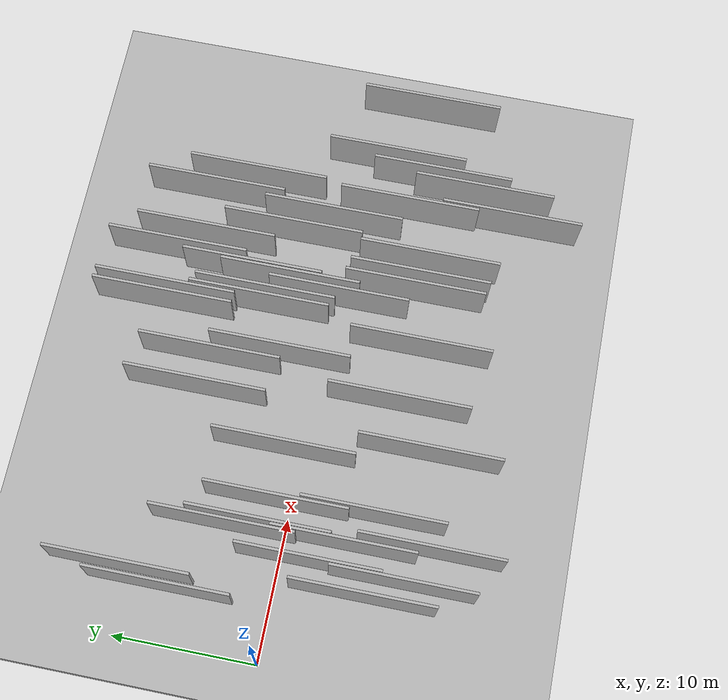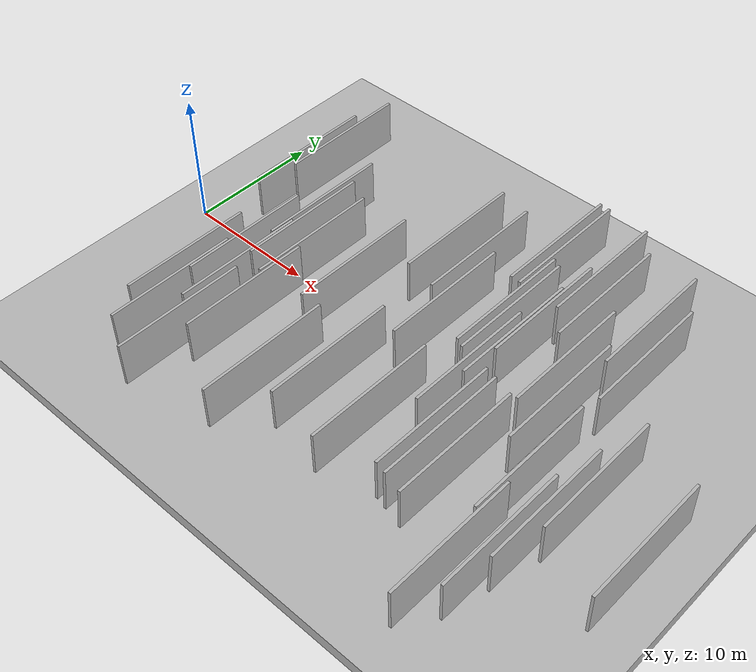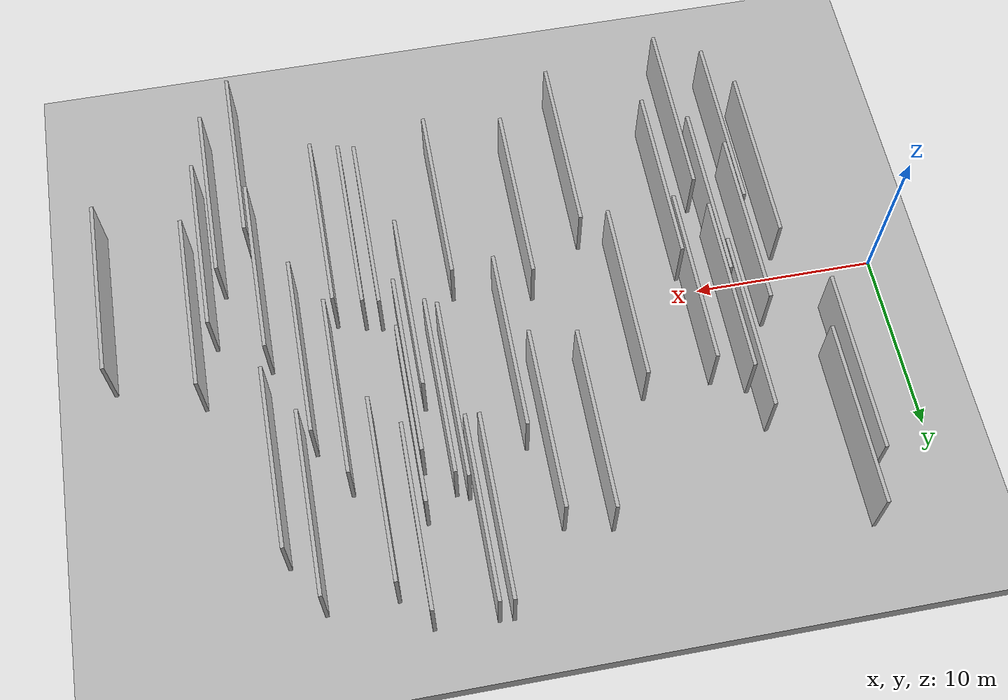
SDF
<?xml version="1.0" encoding="utf-8"?>

<sdf version="1.6">

   <world name="default">

      <gui fullscreen="0">

         <camera name="user_camera">

            <pose>-15 0 4.57585 0 0 0</pose>

            <view_controller>orbit</view_controller>

         </camera>

      </gui>

      <scene>

         <sky>

           <clouds>

             <speed>12</speed>

           </clouds>

         </sky>

         <ambient>0.4 0.4 0.4 1</ambient>

         <background>0.7 0.7 0.7 1</background>

         <shadows>1</shadows>

      </scene>

      <gravity>0 0 -9.8066</gravity>

      <magnetic_field>6e-06 2.3e-05 -4.2e-05</magnetic_field>

      <physics default="0" name="default_physics" type="ode">

         <ode>

            <solver>

               <type>quick</type>

               <iters>10</iters>

               <sor>1.0</sor>

               <use_dynamic_moi_rescaling>0</use_dynamic_moi_rescaling>

            </solver>

            <constraints>

               <cfm>0</cfm>

               <erp>0.2</erp>

               <contact_max_correcting_vel>100</contact_max_correcting_vel>

               <contact_surface_layer>0.001</contact_surface_layer>

            </constraints>

         </ode>

         <max_step_size>0.004</max_step_size>

         <real_time_factor>1</real_time_factor>

         <real_time_update_rate>250</real_time_update_rate>

      </physics>

      <light name="sun" type="directional">

         <cast_shadows>1</cast_shadows>

         <pose>0 0 10 0 0 0</pose>

         <diffuse>0.8 0.8 0.8 1</diffuse>

         <specular>0.2 0.2 0.2 1</specular>

         <attenuation>

            <range>1000</range>

            <constant>0.9</constant>

            <linear>0.01</linear>

            <quadratic>0.001</quadratic>

         </attenuation>

         <direction>-0.5 0.1 -0.9</direction>

      </light>

      <include>

         <name>ground_plane_1</name>

         <uri>model://HANNAS_ground_plane</uri>

         <pose>0 0 0  0 0 0</pose>

      </include>

      <include>

         <name>ground_plane_2</name>

         <uri>model://HANNAS_ground_plane</uri>

         <pose>100 0 0  0 0 0</pose>

      </include>

      <model name="HANNAS_wall_1">

         <static>1</static>

         <pose frame="">28.5564 -5.6848 0.0 0.000000 0.000000 1.570796</pose>

         <link name="link">

            <pose frame="">0 0 2.00 0 0 0</pose>

            <collision name="collision">

               <geometry>

                  <box>

                     <size>10.00 0.2 4.00</size>

                  </box>

               </geometry>

               <max_contacts>10</max_contacts>

               <surface>

                  <contact>

                     <ode/>

                  </contact>

                  <bounce/>

                  <friction>

                     <torsional>

                        <ode/>

                     </torsional>

                     <ode/>

                  </friction>

               </surface>

            </collision>

            <visual name="visual">

               <cast_shadows>0</cast_shadows>

               <geometry>

                  <box>

                     <size>10.00 0.2 4.00</size>

                  </box>

               </geometry>

               <material>

                  <script>

                     <uri>model://HANNAS_wall/materials/scripts</uri>

                     <uri>model://HANNAS_wall/materials/textures</uri>

                     <name>vrc/HANNAS_wall</name>

                  </script>

               </material>

            </visual>

            <self_collide>0</self_collide>

            <enable_wind>0</enable_wind>

            <kinematic>0</kinematic>

         </link>

      </model>

      <model name="HANNAS_wall_2">

         <static>1</static>

         <pose frame="">24.3171 11.7941 0.0 0.000000 0.000000 1.570796</pose>

         <link name="link">

            <pose frame="">0 0 2.00 0 0 0</pose>

            <collision name="collision">

               <geometry>

                  <box>

                     <size>10.00 0.2 4.00</size>

                  </box>

               </geometry>

               <max_contacts>10</max_contacts>

               <surface>

                  <contact>

                     <ode/>

                  </contact>

                  <bounce/>

                  <friction>

                     <torsional>

                        <ode/>

                     </torsional>

                     <ode/>

                  </friction>

               </surface>

            </collision>

            <visual name="visual">

               <cast_shadows>0</cast_shadows>

               <geometry>

                  <box>

                     <size>10.00 0.2 4.00</size>

                  </box>

               </geometry>

               <material>

                  <script>

                     <uri>model://HANNAS_wall/materials/scripts</uri>

                     <uri>model://HANNAS_wall/materials/textures</uri>

                     <name>vrc/HANNAS_wall</name>

                  </script>

               </material>

            </visual>

            <self_collide>0</self_collide>

            <enable_wind>0</enable_wind>

            <kinematic>0</kinematic>

         </link>

      </model>

      <model name="HANNAS_wall_3">

         <static>1</static>

         <pose frame="">8.7863 -4.0638 0.0 0.000000 0.000000 1.570796</pose>

         <link name="link">

            <pose frame="">0 0 2.00 0 0 0</pose>

            <collision name="collision">

               <geometry>

                  <box>

                     <size>10.00 0.2 4.00</size>

                  </box>

               </geometry>

               <max_contacts>10</max_contacts>

               <surface>

                  <contact>

                     <ode/>

                  </contact>

                  <bounce/>

                  <friction>

                     <torsional>

                        <ode/>

                     </torsional>

                     <ode/>

                  </friction>

               </surface>

            </collision>

            <visual name="visual">

               <cast_shadows>0</cast_shadows>

               <geometry>

                  <box>

                     <size>10.00 0.2 4.00</size>

                  </box>

               </geometry>

               <material>

                  <script>

                     <uri>model://HANNAS_wall/materials/scripts</uri>

                     <uri>model://HANNAS_wall/materials/textures</uri>

                     <name>vrc/HANNAS_wall</name>

                  </script>

               </material>

            </visual>

            <self_collide>0</self_collide>

            <enable_wind>0</enable_wind>

            <kinematic>0</kinematic>

         </link>

      </model>

      <model name="HANNAS_wall_4">

         <static>1</static>

         <pose frame="">3.6507 7.4484 0.0 0.000000 0.000000 1.570796</pose>

         <link name="link">

            <pose frame="">0 0 2.00 0 0 0</pose>

            <collision name="collision">

               <geometry>

                  <box>

                     <size>10.00 0.2 4.00</size>

                  </box>

               </geometry>

               <max_contacts>10</max_contacts>

               <surface>

                  <contact>

                     <ode/>

                  </contact>

                  <bounce/>

                  <friction>

                     <torsional>

                        <ode/>

                     </torsional>

                     <ode/>

                  </friction>

               </surface>

            </collision>

            <visual name="visual">

               <cast_shadows>0</cast_shadows>

               <geometry>

                  <box>

                     <size>10.00 0.2 4.00</size>

                  </box>

               </geometry>

               <material>

                  <script>

                     <uri>model://HANNAS_wall/materials/scripts</uri>

                     <uri>model://HANNAS_wall/materials/textures</uri>

                     <name>vrc/HANNAS_wall</name>

                  </script>

               </material>

            </visual>

            <self_collide>0</self_collide>

            <enable_wind>0</enable_wind>

            <kinematic>0</kinematic>

         </link>

      </model>

      <model name="HANNAS_wall_5">

         <static>1</static>

         <pose frame="">34.2869 7.2244 0.0 0.000000 0.000000 1.570796</pose>

         <link name="link">

            <pose frame="">0 0 2.00 0 0 0</pose>

            <collision name="collision">

               <geometry>

                  <box>

                     <size>10.00 0.2 4.00</size>

                  </box>

               </geometry>

               <max_contacts>10</max_contacts>

               <surface>

                  <contact>

                     <ode/>

                  </contact>

                  <bounce/>

                  <friction>

                     <torsional>

                        <ode/>

                     </torsional>

                     <ode/>

                  </friction>

               </surface>

            </collision>

            <visual name="visual">

               <cast_shadows>0</cast_shadows>

               <geometry>

                  <box>

                     <size>10.00 0.2 4.00</size>

                  </box>

               </geometry>

               <material>

                  <script>

                     <uri>model://HANNAS_wall/materials/scripts</uri>

                     <uri>model://HANNAS_wall/materials/textures</uri>

                     <name>vrc/HANNAS_wall</name>

                  </script>

               </material>

            </visual>

            <self_collide>0</self_collide>

            <enable_wind>0</enable_wind>

            <kinematic>0</kinematic>

         </link>

      </model>

      <model name="HANNAS_wall_6">

         <static>1</static>

         <pose frame="">20.2067 7.6644 0.0 0.000000 0.000000 1.570796</pose>

         <link name="link">

            <pose frame="">0 0 2.00 0 0 0</pose>

            <collision name="collision">

               <geometry>

                  <box>

                     <size>10.00 0.2 4.00</size>

                  </box>

               </geometry>

               <max_contacts>10</max_contacts>

               <surface>

                  <contact>

                     <ode/>

                  </contact>

                  <bounce/>

                  <friction>

                     <torsional>

                        <ode/>

                     </torsional>

                     <ode/>

                  </friction>

               </surface>

            </collision>

            <visual name="visual">

               <cast_shadows>0</cast_shadows>

               <geometry>

                  <box>

                     <size>10.00 0.2 4.00</size>

                  </box>

               </geometry>

               <material>

                  <script>

                     <uri>model://HANNAS_wall/materials/scripts</uri>

                     <uri>model://HANNAS_wall/materials/textures</uri>

                     <name>vrc/HANNAS_wall</name>

                  </script>

               </material>

            </visual>

            <self_collide>0</self_collide>

            <enable_wind>0</enable_wind>

            <kinematic>0</kinematic>

         </link>

      </model>

      <model name="HANNAS_wall_7">

         <static>1</static>

         <pose frame="">32.7635 9.9682 0.0 0.000000 0.000000 1.570796</pose>

         <link name="link">

            <pose frame="">0 0 2.00 0 0 0</pose>

            <collision name="collision">

               <geometry>

                  <box>

                     <size>10.00 0.2 4.00</size>

                  </box>

               </geometry>

               <max_contacts>10</max_contacts>

               <surface>

                  <contact>

                     <ode/>

                  </contact>

                  <bounce/>

                  <friction>

                     <torsional>

                        <ode/>

                     </torsional>

                     <ode/>

                  </friction>

               </surface>

            </collision>

            <visual name="visual">

               <cast_shadows>0</cast_shadows>

               <geometry>

                  <box>

                     <size>10.00 0.2 4.00</size>

                  </box>

               </geometry>

               <material>

                  <script>

                     <uri>model://HANNAS_wall/materials/scripts</uri>

                     <uri>model://HANNAS_wall/materials/textures</uri>

                     <name>vrc/HANNAS_wall</name>

                  </script>

               </material>

            </visual>

            <self_collide>0</self_collide>

            <enable_wind>0</enable_wind>

            <kinematic>0</kinematic>

         </link>

      </model>

      <model name="HANNAS_wall_8">

         <static>1</static>

         <pose frame="">30.5860 3.8707 0.0 0.000000 0.000000 1.570796</pose>

         <link name="link">

            <pose frame="">0 0 2.00 0 0 0</pose>

            <collision name="collision">

               <geometry>

                  <box>

                     <size>10.00 0.2 4.00</size>

                  </box>

               </geometry>

               <max_contacts>10</max_contacts>

               <surface>

                  <contact>

                     <ode/>

                  </contact>

                  <bounce/>

                  <friction>

                     <torsional>

                        <ode/>

                     </torsional>

                     <ode/>

                  </friction>

               </surface>

            </collision>

            <visual name="visual">

               <cast_shadows>0</cast_shadows>

               <geometry>

                  <box>

                     <size>10.00 0.2 4.00</size>

                  </box>

               </geometry>

               <material>

                  <script>

                     <uri>model://HANNAS_wall/materials/scripts</uri>

                     <uri>model://HANNAS_wall/materials/textures</uri>

                     <name>vrc/HANNAS_wall</name>

                  </script>

               </material>

            </visual>

            <self_collide>0</self_collide>

            <enable_wind>0</enable_wind>

            <kinematic>0</kinematic>

         </link>

      </model>

      <model name="HANNAS_wall_9">

         <static>1</static>

         <pose frame="">11.0904 -5.6479 0.0 0.000000 0.000000 1.570796</pose>

         <link name="link">

            <pose frame="">0 0 2.00 0 0 0</pose>

            <collision name="collision">

               <geometry>

                  <box>

                     <size>10.00 0.2 4.00</size>

                  </box>

               </geometry>

               <max_contacts>10</max_contacts>

               <surface>

                  <contact>

                     <ode/>

                  </contact>

                  <bounce/>

                  <friction>

                     <torsional>

                        <ode/>

                     </torsional>

                     <ode/>

                  </friction>

               </surface>

            </collision>

            <visual name="visual">

               <cast_shadows>0</cast_shadows>

               <geometry>

                  <box>

                     <size>10.00 0.2 4.00</size>

                  </box>

               </geometry>

               <material>

                  <script>

                     <uri>model://HANNAS_wall/materials/scripts</uri>

                     <uri>model://HANNAS_wall/materials/textures</uri>

                     <name>vrc/HANNAS_wall</name>

                  </script>

               </material>

            </visual>

            <self_collide>0</self_collide>

            <enable_wind>0</enable_wind>

            <kinematic>0</kinematic>

         </link>

      </model>

      <model name="HANNAS_wall_10">

         <static>1</static>

         <pose frame="">10.7906 0.9531 0.0 0.000000 0.000000 1.570796</pose>

         <link name="link">

            <pose frame="">0 0 2.00 0 0 0</pose>

            <collision name="collision">

               <geometry>

                  <box>

                     <size>10.00 0.2 4.00</size>

                  </box>

               </geometry>

               <max_contacts>10</max_contacts>

               <surface>

                  <contact>

                     <ode/>

                  </contact>

                  <bounce/>

                  <friction>

                     <torsional>

                        <ode/>

                     </torsional>

                     <ode/>

                  </friction>

               </surface>

            </collision>

            <visual name="visual">

               <cast_shadows>0</cast_shadows>

               <geometry>

                  <box>

                     <size>10.00 0.2 4.00</size>

                  </box>

               </geometry>

               <material>

                  <script>

                     <uri>model://HANNAS_wall/materials/scripts</uri>

                     <uri>model://HANNAS_wall/materials/textures</uri>

                     <name>vrc/HANNAS_wall</name>

                  </script>

               </material>

            </visual>

            <self_collide>0</self_collide>

            <enable_wind>0</enable_wind>

            <kinematic>0</kinematic>

         </link>

      </model>

      <model name="HANNAS_wall_11">

         <static>1</static>

         <pose frame="">25.3013 4.8208 0.0 0.000000 0.000000 1.570796</pose>

         <link name="link">

            <pose frame="">0 0 2.00 0 0 0</pose>

            <collision name="collision">

               <geometry>

                  <box>

                     <size>10.00 0.2 4.00</size>

                  </box>

               </geometry>

               <max_contacts>10</max_contacts>

               <surface>

                  <contact>

                     <ode/>

                  </contact>

                  <bounce/>

                  <friction>

                     <torsional>

                        <ode/>

                     </torsional>

                     <ode/>

                  </friction>

               </surface>

            </collision>

            <visual name="visual">

               <cast_shadows>0</cast_shadows>

               <geometry>

                  <box>

                     <size>10.00 0.2 4.00</size>

                  </box>

               </geometry>

               <material>

                  <script>

                     <uri>model://HANNAS_wall/materials/scripts</uri>

                     <uri>model://HANNAS_wall/materials/textures</uri>

                     <name>vrc/HANNAS_wall</name>

                  </script>

               </material>

            </visual>

            <self_collide>0</self_collide>

            <enable_wind>0</enable_wind>

            <kinematic>0</kinematic>

         </link>

      </model>

      <model name="HANNAS_wall_12">

         <static>1</static>

         <pose frame="">36.7367 -5.8674 0.0 0.000000 0.000000 1.570796</pose>

         <link name="link">

            <pose frame="">0 0 2.00 0 0 0</pose>

            <collision name="collision">

               <geometry>

                  <box>

                     <size>10.00 0.2 4.00</size>

                  </box>

               </geometry>

               <max_contacts>10</max_contacts>

               <surface>

                  <contact>

                     <ode/>

                  </contact>

                  <bounce/>

                  <friction>

                     <torsional>

                        <ode/>

                     </torsional>

                     <ode/>

                  </friction>

               </surface>

            </collision>

            <visual name="visual">

               <cast_shadows>0</cast_shadows>

               <geometry>

                  <box>

                     <size>10.00 0.2 4.00</size>

                  </box>

               </geometry>

               <material>

                  <script>

                     <uri>model://HANNAS_wall/materials/scripts</uri>

                     <uri>model://HANNAS_wall/materials/textures</uri>

                     <name>vrc/HANNAS_wall</name>

                  </script>

               </material>

            </visual>

            <self_collide>0</self_collide>

            <enable_wind>0</enable_wind>

            <kinematic>0</kinematic>

         </link>

      </model>

      <model name="HANNAS_wall_13">

         <static>1</static>

         <pose frame="">42.3503 -4.1378 0.0 0.000000 0.000000 1.570796</pose>

         <link name="link">

            <pose frame="">0 0 2.00 0 0 0</pose>

            <collision name="collision">

               <geometry>

                  <box>

                     <size>10.00 0.2 4.00</size>

                  </box>

               </geometry>

               <max_contacts>10</max_contacts>

               <surface>

                  <contact>

                     <ode/>

                  </contact>

                  <bounce/>

                  <friction>

                     <torsional>

                        <ode/>

                     </torsional>

                     <ode/>

                  </friction>

               </surface>

            </collision>

            <visual name="visual">

               <cast_shadows>0</cast_shadows>

               <geometry>

                  <box>

                     <size>10.00 0.2 4.00</size>

                  </box>

               </geometry>

               <material>

                  <script>

                     <uri>model://HANNAS_wall/materials/scripts</uri>

                     <uri>model://HANNAS_wall/materials/textures</uri>

                     <name>vrc/HANNAS_wall</name>

                  </script>

               </material>

            </visual>

            <self_collide>0</self_collide>

            <enable_wind>0</enable_wind>

            <kinematic>0</kinematic>

         </link>

      </model>

      <model name="HANNAS_wall_14">

         <static>1</static>

         <pose frame="">9.0002 1.7939 0.0 0.000000 0.000000 1.570796</pose>

         <link name="link">

            <pose frame="">0 0 2.00 0 0 0</pose>

            <collision name="collision">

               <geometry>

                  <box>

                     <size>10.00 0.2 4.00</size>

                  </box>

               </geometry>

               <max_contacts>10</max_contacts>

               <surface>

                  <contact>

                     <ode/>

                  </contact>

                  <bounce/>

                  <friction>

                     <torsional>

                        <ode/>

                     </torsional>

                     <ode/>

                  </friction>

               </surface>

            </collision>

            <visual name="visual">

               <cast_shadows>0</cast_shadows>

               <geometry>

                  <box>

                     <size>10.00 0.2 4.00</size>

                  </box>

               </geometry>

               <material>

                  <script>

                     <uri>model://HANNAS_wall/materials/scripts</uri>

                     <uri>model://HANNAS_wall/materials/textures</uri>

                     <name>vrc/HANNAS_wall</name>

                  </script>

               </material>

            </visual>

            <self_collide>0</self_collide>

            <enable_wind>0</enable_wind>

            <kinematic>0</kinematic>

         </link>

      </model>

      <model name="HANNAS_wall_15">

         <static>1</static>

         <pose frame="">33.9420 -3.9462 0.0 0.000000 0.000000 1.570796</pose>

         <link name="link">

            <pose frame="">0 0 2.00 0 0 0</pose>

            <collision name="collision">

               <geometry>

                  <box>

                     <size>10.00 0.2 4.00</size>

                  </box>

               </geometry>

               <max_contacts>10</max_contacts>

               <surface>

                  <contact>

                     <ode/>

                  </contact>

                  <bounce/>

                  <friction>

                     <torsional>

                        <ode/>

                     </torsional>

                     <ode/>

                  </friction>

               </surface>

            </collision>

            <visual name="visual">

               <cast_shadows>0</cast_shadows>

               <geometry>

                  <box>

                     <size>10.00 0.2 4.00</size>

                  </box>

               </geometry>

               <material>

                  <script>

                     <uri>model://HANNAS_wall/materials/scripts</uri>

                     <uri>model://HANNAS_wall/materials/textures</uri>

                     <name>vrc/HANNAS_wall</name>

                  </script>

               </material>

            </visual>

            <self_collide>0</self_collide>

            <enable_wind>0</enable_wind>

            <kinematic>0</kinematic>

         </link>

      </model>

      <model name="HANNAS_wall_16">

         <static>1</static>

         <pose frame="">23.5548 -6.6280 0.0 0.000000 0.000000 1.570796</pose>

         <link name="link">

            <pose frame="">0 0 2.00 0 0 0</pose>

            <collision name="collision">

               <geometry>

                  <box>

                     <size>10.00 0.2 4.00</size>

                  </box>

               </geometry>

               <max_contacts>10</max_contacts>

               <surface>

                  <contact>

                     <ode/>

                  </contact>

                  <bounce/>

                  <friction>

                     <torsional>

                        <ode/>

                     </torsional>

                     <ode/>

                  </friction>

               </surface>

            </collision>

            <visual name="visual">

               <cast_shadows>0</cast_shadows>

               <geometry>

                  <box>

                     <size>10.00 0.2 4.00</size>

                  </box>

               </geometry>

               <material>

                  <script>

                     <uri>model://HANNAS_wall/materials/scripts</uri>

                     <uri>model://HANNAS_wall/materials/textures</uri>

                     <name>vrc/HANNAS_wall</name>

                  </script>

               </material>

            </visual>

            <self_collide>0</self_collide>

            <enable_wind>0</enable_wind>

            <kinematic>0</kinematic>

         </link>

      </model>

      <model name="HANNAS_wall_17">

         <static>1</static>

         <pose frame="">21.2501 2.9231 0.0 0.000000 0.000000 1.570796</pose>

         <link name="link">

            <pose frame="">0 0 2.00 0 0 0</pose>

            <collision name="collision">

               <geometry>

                  <box>

                     <size>10.00 0.2 4.00</size>

                  </box>

               </geometry>

               <max_contacts>10</max_contacts>

               <surface>

                  <contact>

                     <ode/>

                  </contact>

                  <bounce/>

                  <friction>

                     <torsional>

                        <ode/>

                     </torsional>

                     <ode/>

                  </friction>

               </surface>

            </collision>

            <visual name="visual">

               <cast_shadows>0</cast_shadows>

               <geometry>

                  <box>

                     <size>10.00 0.2 4.00</size>

                  </box>

               </geometry>

               <material>

                  <script>

                     <uri>model://HANNAS_wall/materials/scripts</uri>

                     <uri>model://HANNAS_wall/materials/textures</uri>

                     <name>vrc/HANNAS_wall</name>

                  </script>

               </material>

            </visual>

            <self_collide>0</self_collide>

            <enable_wind>0</enable_wind>

            <kinematic>0</kinematic>

         </link>

      </model>

      <model name="HANNAS_wall_18">

         <static>1</static>

         <pose frame="">6.9247 -8.4202 0.0 0.000000 0.000000 1.570796</pose>

         <link name="link">

            <pose frame="">0 0 2.00 0 0 0</pose>

            <collision name="collision">

               <geometry>

                  <box>

                     <size>10.00 0.2 4.00</size>

                  </box>

               </geometry>

               <max_contacts>10</max_contacts>

               <surface>

                  <contact>

                     <ode/>

                  </contact>

                  <bounce/>

                  <friction>

                     <torsional>

                        <ode/>

                     </torsional>

                     <ode/>

                  </friction>

               </surface>

            </collision>

            <visual name="visual">

               <cast_shadows>0</cast_shadows>

               <geometry>

                  <box>

                     <size>10.00 0.2 4.00</size>

                  </box>

               </geometry>

               <material>

                  <script>

                     <uri>model://HANNAS_wall/materials/scripts</uri>

                     <uri>model://HANNAS_wall/materials/textures</uri>

                     <name>vrc/HANNAS_wall</name>

                  </script>

               </material>

            </visual>

            <self_collide>0</self_collide>

            <enable_wind>0</enable_wind>

            <kinematic>0</kinematic>

         </link>

      </model>

      <model name="HANNAS_wall_19">

         <static>1</static>

         <pose frame="">9.4298 -9.8694 0.0 0.000000 0.000000 1.570796</pose>

         <link name="link">

            <pose frame="">0 0 2.00 0 0 0</pose>

            <collision name="collision">

               <geometry>

                  <box>

                     <size>10.00 0.2 4.00</size>

                  </box>

               </geometry>

               <max_contacts>10</max_contacts>

               <surface>

                  <contact>

                     <ode/>

                  </contact>

                  <bounce/>

                  <friction>

                     <torsional>

                        <ode/>

                     </torsional>

                     <ode/>

                  </friction>

               </surface>

            </collision>

            <visual name="visual">

               <cast_shadows>0</cast_shadows>

               <geometry>

                  <box>

                     <size>10.00 0.2 4.00</size>

                  </box>

               </geometry>

               <material>

                  <script>

                     <uri>model://HANNAS_wall/materials/scripts</uri>

                     <uri>model://HANNAS_wall/materials/textures</uri>

                     <name>vrc/HANNAS_wall</name>

                  </script>

               </material>

            </visual>

            <self_collide>0</self_collide>

            <enable_wind>0</enable_wind>

            <kinematic>0</kinematic>

         </link>

      </model>

      <model name="HANNAS_wall_20">

         <static>1</static>

         <pose frame="">32.1527 1.2688 0.0 0.000000 0.000000 1.570796</pose>

         <link name="link">

            <pose frame="">0 0 2.00 0 0 0</pose>

            <collision name="collision">

               <geometry>

                  <box>

                     <size>10.00 0.2 4.00</size>

                  </box>

               </geometry>

               <max_contacts>10</max_contacts>

               <surface>

                  <contact>

                     <ode/>

                  </contact>

                  <bounce/>

                  <friction>

                     <torsional>

                        <ode/>

                     </torsional>

                     <ode/>

                  </friction>

               </surface>

            </collision>

            <visual name="visual">

               <cast_shadows>0</cast_shadows>

               <geometry>

                  <box>

                     <size>10.00 0.2 4.00</size>

                  </box>

               </geometry>

               <material>

                  <script>

                     <uri>model://HANNAS_wall/materials/scripts</uri>

                     <uri>model://HANNAS_wall/materials/textures</uri>

                     <name>vrc/HANNAS_wall</name>

                  </script>

               </material>

            </visual>

            <self_collide>0</self_collide>

            <enable_wind>0</enable_wind>

            <kinematic>0</kinematic>

         </link>

      </model>

      <model name="HANNAS_wall_21">

         <static>1</static>

         <pose frame="">37.6537 -2.3996 0.0 0.000000 0.000000 1.570796</pose>

         <link name="link">

            <pose frame="">0 0 2.00 0 0 0</pose>

            <collision name="collision">

               <geometry>

                  <box>

                     <size>10.00 0.2 4.00</size>

                  </box>

               </geometry>

               <max_contacts>10</max_contacts>

               <surface>

                  <contact>

                     <ode/>

                  </contact>

                  <bounce/>

                  <friction>

                     <torsional>

                        <ode/>

                     </torsional>

                     <ode/>

                  </friction>

               </surface>

            </collision>

            <visual name="visual">

               <cast_shadows>0</cast_shadows>

               <geometry>

                  <box>

                     <size>10.00 0.2 4.00</size>

                  </box>

               </geometry>

               <material>

                  <script>

                     <uri>model://HANNAS_wall/materials/scripts</uri>

                     <uri>model://HANNAS_wall/materials/textures</uri>

                     <name>vrc/HANNAS_wall</name>

                  </script>

               </material>

            </visual>

            <self_collide>0</self_collide>

            <enable_wind>0</enable_wind>

            <kinematic>0</kinematic>

         </link>

      </model>

      <model name="HANNAS_wall_22">

         <static>1</static>

         <pose frame="">27.6797 -5.4801 0.0 0.000000 0.000000 1.570796</pose>

         <link name="link">

            <pose frame="">0 0 2.00 0 0 0</pose>

            <collision name="collision">

               <geometry>

                  <box>

                     <size>10.00 0.2 4.00</size>

                  </box>

               </geometry>

               <max_contacts>10</max_contacts>

               <surface>

                  <contact>

                     <ode/>

                  </contact>

                  <bounce/>

                  <friction>

                     <torsional>

                        <ode/>

                     </torsional>

                     <ode/>

                  </friction>

               </surface>

            </collision>

            <visual name="visual">

               <cast_shadows>0</cast_shadows>

               <geometry>

                  <box>

                     <size>10.00 0.2 4.00</size>

                  </box>

               </geometry>

               <material>

                  <script>

                     <uri>model://HANNAS_wall/materials/scripts</uri>

                     <uri>model://HANNAS_wall/materials/textures</uri>

                     <name>vrc/HANNAS_wall</name>

                  </script>

               </material>

            </visual>

            <self_collide>0</self_collide>

            <enable_wind>0</enable_wind>

            <kinematic>0</kinematic>

         </link>

      </model>

      <model name="HANNAS_wall_23">

         <static>1</static>

         <pose frame="">29.0795 9.9142 0.0 0.000000 0.000000 1.570796</pose>

         <link name="link">

            <pose frame="">0 0 2.00 0 0 0</pose>

            <collision name="collision">

               <geometry>

                  <box>

                     <size>10.00 0.2 4.00</size>

                  </box>

               </geometry>

               <max_contacts>10</max_contacts>

               <surface>

                  <contact>

                     <ode/>

                  </contact>

                  <bounce/>

                  <friction>

                     <torsional>

                        <ode/>

                     </torsional>

                     <ode/>

                  </friction>

               </surface>

            </collision>

            <visual name="visual">

               <cast_shadows>0</cast_shadows>

               <geometry>

                  <box>

                     <size>10.00 0.2 4.00</size>

                  </box>

               </geometry>

               <material>

                  <script>

                     <uri>model://HANNAS_wall/materials/scripts</uri>

                     <uri>model://HANNAS_wall/materials/textures</uri>

                     <name>vrc/HANNAS_wall</name>

                  </script>

               </material>

            </visual>

            <self_collide>0</self_collide>

            <enable_wind>0</enable_wind>

            <kinematic>0</kinematic>

         </link>

      </model>

      <model name="HANNAS_wall_24">

         <static>1</static>

         <pose frame="">27.5880 11.6455 0.0 0.000000 0.000000 1.570796</pose>

         <link name="link">

            <pose frame="">0 0 2.00 0 0 0</pose>

            <collision name="collision">

               <geometry>

                  <box>

                     <size>10.00 0.2 4.00</size>

                  </box>

               </geometry>

               <max_contacts>10</max_contacts>

               <surface>

                  <contact>

                     <ode/>

                  </contact>

                  <bounce/>

                  <friction>

                     <torsional>

                        <ode/>

                     </torsional>

                     <ode/>

                  </friction>

               </surface>

            </collision>

            <visual name="visual">

               <cast_shadows>0</cast_shadows>

               <geometry>

                  <box>

                     <size>10.00 0.2 4.00</size>

                  </box>

               </geometry>

               <material>

                  <script>

                     <uri>model://HANNAS_wall/materials/scripts</uri>

                     <uri>model://HANNAS_wall/materials/textures</uri>

                     <name>vrc/HANNAS_wall</name>

                  </script>

               </material>

            </visual>

            <self_collide>0</self_collide>

            <enable_wind>0</enable_wind>

            <kinematic>0</kinematic>

         </link>

      </model>

      <model name="HANNAS_wall_25">

         <static>1</static>

         <pose frame="">24.6674 5.1399 0.0 0.000000 0.000000 1.570796</pose>

         <link name="link">

            <pose frame="">0 0 2.00 0 0 0</pose>

            <collision name="collision">

               <geometry>

                  <box>

                     <size>10.00 0.2 4.00</size>

                  </box>

               </geometry>

               <max_contacts>10</max_contacts>

               <surface>

                  <contact>

                     <ode/>

                  </contact>

                  <bounce/>

                  <friction>

                     <torsional>

                        <ode/>

                     </torsional>

                     <ode/>

                  </friction>

               </surface>

            </collision>

            <visual name="visual">

               <cast_shadows>0</cast_shadows>

               <geometry>

                  <box>

                     <size>10.00 0.2 4.00</size>

                  </box>

               </geometry>

               <material>

                  <script>

                     <uri>model://HANNAS_wall/materials/scripts</uri>

                     <uri>model://HANNAS_wall/materials/textures</uri>

                     <name>vrc/HANNAS_wall</name>

                  </script>

               </material>

            </visual>

            <self_collide>0</self_collide>

            <enable_wind>0</enable_wind>

            <kinematic>0</kinematic>

         </link>

      </model>

      <model name="HANNAS_wall_26">

         <static>1</static>

         <pose frame="">14.5586 1.2265 0.0 0.000000 0.000000 1.570796</pose>

         <link name="link">

            <pose frame="">0 0 2.00 0 0 0</pose>

            <collision name="collision">

               <geometry>

                  <box>

                     <size>10.00 0.2 4.00</size>

                  </box>

               </geometry>

               <max_contacts>10</max_contacts>

               <surface>

                  <contact>

                     <ode/>

                  </contact>

                  <bounce/>

                  <friction>

                     <torsional>

                        <ode/>

                     </torsional>

                     <ode/>

                  </friction>

               </surface>

            </collision>

            <visual name="visual">

               <cast_shadows>0</cast_shadows>

               <geometry>

                  <box>

                     <size>10.00 0.2 4.00</size>

                  </box>

               </geometry>

               <material>

                  <script>

                     <uri>model://HANNAS_wall/materials/scripts</uri>

                     <uri>model://HANNAS_wall/materials/textures</uri>

                     <name>vrc/HANNAS_wall</name>

                  </script>

               </material>

            </visual>

            <self_collide>0</self_collide>

            <enable_wind>0</enable_wind>

            <kinematic>0</kinematic>

         </link>

      </model>

      <model name="HANNAS_wall_27">

         <static>1</static>

         <pose frame="">5.5411 -5.9637 0.0 0.000000 0.000000 1.570796</pose>

         <link name="link">

            <pose frame="">0 0 2.00 0 0 0</pose>

            <collision name="collision">

               <geometry>

                  <box>

                     <size>10.00 0.2 4.00</size>

                  </box>

               </geometry>

               <max_contacts>10</max_contacts>

               <surface>

                  <contact>

                     <ode/>

                  </contact>

                  <bounce/>

                  <friction>

                     <torsional>

                        <ode/>

                     </torsional>

                     <ode/>

                  </friction>

               </surface>

            </collision>

            <visual name="visual">

               <cast_shadows>0</cast_shadows>

               <geometry>

                  <box>

                     <size>10.00 0.2 4.00</size>

                  </box>

               </geometry>

               <material>

                  <script>

                     <uri>model://HANNAS_wall/materials/scripts</uri>

                     <uri>model://HANNAS_wall/materials/textures</uri>

                     <name>vrc/HANNAS_wall</name>

                  </script>

               </material>

            </visual>

            <self_collide>0</self_collide>

            <enable_wind>0</enable_wind>

            <kinematic>0</kinematic>

         </link>

      </model>

      <model name="HANNAS_wall_28">

         <static>1</static>

         <pose frame="">26.1419 -0.2952 0.0 0.000000 0.000000 1.570796</pose>

         <link name="link">

            <pose frame="">0 0 2.00 0 0 0</pose>

            <collision name="collision">

               <geometry>

                  <box>

                     <size>10.00 0.2 4.00</size>

                  </box>

               </geometry>

               <max_contacts>10</max_contacts>

               <surface>

                  <contact>

                     <ode/>

                  </contact>

                  <bounce/>

                  <friction>

                     <torsional>

                        <ode/>

                     </torsional>

                     <ode/>

                  </friction>

               </surface>

            </collision>

            <visual name="visual">

               <cast_shadows>0</cast_shadows>

               <geometry>

                  <box>

                     <size>10.00 0.2 4.00</size>

                  </box>

               </geometry>

               <material>

                  <script>

                     <uri>model://HANNAS_wall/materials/scripts</uri>

                     <uri>model://HANNAS_wall/materials/textures</uri>

                     <name>vrc/HANNAS_wall</name>

                  </script>

               </material>

            </visual>

            <self_collide>0</self_collide>

            <enable_wind>0</enable_wind>

            <kinematic>0</kinematic>

         </link>

      </model>

      <model name="HANNAS_wall_29">

         <static>1</static>

         <pose frame="">16.0896 -8.6181 0.0 0.000000 0.000000 1.570796</pose>

         <link name="link">

            <pose frame="">0 0 2.00 0 0 0</pose>

            <collision name="collision">

               <geometry>

                  <box>

                     <size>10.00 0.2 4.00</size>

                  </box>

               </geometry>

               <max_contacts>10</max_contacts>

               <surface>

                  <contact>

                     <ode/>

                  </contact>

                  <bounce/>

                  <friction>

                     <torsional>

                        <ode/>

                     </torsional>

                     <ode/>

                  </friction>

               </surface>

            </collision>

            <visual name="visual">

               <cast_shadows>0</cast_shadows>

               <geometry>

                  <box>

                     <size>10.00 0.2 4.00</size>

                  </box>

               </geometry>

               <material>

                  <script>

                     <uri>model://HANNAS_wall/materials/scripts</uri>

                     <uri>model://HANNAS_wall/materials/textures</uri>

                     <name>vrc/HANNAS_wall</name>

                  </script>

               </material>

            </visual>

            <self_collide>0</self_collide>

            <enable_wind>0</enable_wind>

            <kinematic>0</kinematic>

         </link>

      </model>

      <model name="HANNAS_wall_30">

         <static>1</static>

         <pose frame="">17.7099 8.1369 0.0 0.000000 0.000000 1.570796</pose>

         <link name="link">

            <pose frame="">0 0 2.00 0 0 0</pose>

            <collision name="collision">

               <geometry>

                  <box>

                     <size>10.00 0.2 4.00</size>

                  </box>

               </geometry>

               <max_contacts>10</max_contacts>

               <surface>

                  <contact>

                     <ode/>

                  </contact>

                  <bounce/>

                  <friction>

                     <torsional>

                        <ode/>

                     </torsional>

                     <ode/>

                  </friction>

               </surface>

            </collision>

            <visual name="visual">

               <cast_shadows>0</cast_shadows>

               <geometry>

                  <box>

                     <size>10.00 0.2 4.00</size>

                  </box>

               </geometry>

               <material>

                  <script>

                     <uri>model://HANNAS_wall/materials/scripts</uri>

                     <uri>model://HANNAS_wall/materials/textures</uri>

                     <name>vrc/HANNAS_wall</name>

                  </script>

               </material>

            </visual>

            <self_collide>0</self_collide>

            <enable_wind>0</enable_wind>

            <kinematic>0</kinematic>

         </link>

      </model>

      <model name="HANNAS_wall_31">

         <static>1</static>

         <pose frame="">30.0886 -6.0954 0.0 0.000000 0.000000 1.570796</pose>

         <link name="link">

            <pose frame="">0 0 2.00 0 0 0</pose>

            <collision name="collision">

               <geometry>

                  <box>

                     <size>10.00 0.2 4.00</size>

                  </box>

               </geometry>

               <max_contacts>10</max_contacts>

               <surface>

                  <contact>

                     <ode/>

                  </contact>

                  <bounce/>

                  <friction>

                     <torsional>

                        <ode/>

                     </torsional>

                     <ode/>

                  </friction>

               </surface>

            </collision>

            <visual name="visual">

               <cast_shadows>0</cast_shadows>

               <geometry>

                  <box>

                     <size>10.00 0.2 4.00</size>

                  </box>

               </geometry>

               <material>

                  <script>

                     <uri>model://HANNAS_wall/materials/scripts</uri>

                     <uri>model://HANNAS_wall/materials/textures</uri>

                     <name>vrc/HANNAS_wall</name>

                  </script>

               </material>

            </visual>

            <self_collide>0</self_collide>

            <enable_wind>0</enable_wind>

            <kinematic>0</kinematic>

         </link>

      </model>

      <model name="HANNAS_wall_32">

         <static>1</static>

         <pose frame="">23.5761 11.8347 0.0 0.000000 0.000000 1.570796</pose>

         <link name="link">

            <pose frame="">0 0 2.00 0 0 0</pose>

            <collision name="collision">

               <geometry>

                  <box>

                     <size>10.00 0.2 4.00</size>

                  </box>

               </geometry>

               <max_contacts>10</max_contacts>

               <surface>

                  <contact>

                     <ode/>

                  </contact>

                  <bounce/>

                  <friction>

                     <torsional>

                        <ode/>

                     </torsional>

                     <ode/>

                  </friction>

               </surface>

            </collision>

            <visual name="visual">

               <cast_shadows>0</cast_shadows>

               <geometry>

                  <box>

                     <size>10.00 0.2 4.00</size>

                  </box>

               </geometry>

               <material>

                  <script>

                     <uri>model://HANNAS_wall/materials/scripts</uri>

                     <uri>model://HANNAS_wall/materials/textures</uri>

                     <name>vrc/HANNAS_wall</name>

                  </script>

               </material>

            </visual>

            <self_collide>0</self_collide>

            <enable_wind>0</enable_wind>

            <kinematic>0</kinematic>

         </link>

      </model>

      <model name="HANNAS_wall_33">

         <static>1</static>

         <pose frame="">34.2433 -11.2999 0.0 0.000000 0.000000 1.570796</pose>

         <link name="link">

            <pose frame="">0 0 2.00 0 0 0</pose>

            <collision name="collision">

               <geometry>

                  <box>

                     <size>10.00 0.2 4.00</size>

                  </box>

               </geometry>

               <max_contacts>10</max_contacts>

               <surface>

                  <contact>

                     <ode/>

                  </contact>

                  <bounce/>

                  <friction>

                     <torsional>

                        <ode/>

                     </torsional>

                     <ode/>

                  </friction>

               </surface>

            </collision>

            <visual name="visual">

               <cast_shadows>0</cast_shadows>

               <geometry>

                  <box>

                     <size>10.00 0.2 4.00</size>

                  </box>

               </geometry>

               <material>

                  <script>

                     <uri>model://HANNAS_wall/materials/scripts</uri>

                     <uri>model://HANNAS_wall/materials/textures</uri>

                     <name>vrc/HANNAS_wall</name>

                  </script>

               </material>

            </visual>

            <self_collide>0</self_collide>

            <enable_wind>0</enable_wind>

            <kinematic>0</kinematic>

         </link>

      </model>

      <model name="HANNAS_wall_34">

         <static>1</static>

         <pose frame="">26.7663 3.3292 0.0 0.000000 0.000000 1.570796</pose>

         <link name="link">

            <pose frame="">0 0 2.00 0 0 0</pose>

            <collision name="collision">

               <geometry>

                  <box>

                     <size>10.00 0.2 4.00</size>

                  </box>

               </geometry>

               <max_contacts>10</max_contacts>

               <surface>

                  <contact>

                     <ode/>

                  </contact>

                  <bounce/>

                  <friction>

                     <torsional>

                        <ode/>

                     </torsional>

                     <ode/>

                  </friction>

               </surface>

            </collision>

            <visual name="visual">

               <cast_shadows>0</cast_shadows>

               <geometry>

                  <box>

                     <size>10.00 0.2 4.00</size>

                  </box>

               </geometry>

               <material>

                  <script>

                     <uri>model://HANNAS_wall/materials/scripts</uri>

                     <uri>model://HANNAS_wall/materials/textures</uri>

                     <name>vrc/HANNAS_wall</name>

                  </script>

               </material>

            </visual>

            <self_collide>0</self_collide>

            <enable_wind>0</enable_wind>

            <kinematic>0</kinematic>

         </link>

      </model>

      <model name="HANNAS_wall_35">

         <static>1</static>

         <pose frame="">19.2605 -5.8779 0.0 0.000000 0.000000 1.570796</pose>

         <link name="link">

            <pose frame="">0 0 2.00 0 0 0</pose>

            <collision name="collision">

               <geometry>

                  <box>

                     <size>10.00 0.2 4.00</size>

                  </box>

               </geometry>

               <max_contacts>10</max_contacts>

               <surface>

                  <contact>

                     <ode/>

                  </contact>

                  <bounce/>

                  <friction>

                     <torsional>

                        <ode/>

                     </torsional>

                     <ode/>

                  </friction>

               </surface>

            </collision>

            <visual name="visual">

               <cast_shadows>0</cast_shadows>

               <geometry>

                  <box>

                     <size>10.00 0.2 4.00</size>

                  </box>

               </geometry>

               <material>

                  <script>

                     <uri>model://HANNAS_wall/materials/scripts</uri>

                     <uri>model://HANNAS_wall/materials/textures</uri>

                     <name>vrc/HANNAS_wall</name>

                  </script>

               </material>

            </visual>

            <self_collide>0</self_collide>

            <enable_wind>0</enable_wind>

            <kinematic>0</kinematic>

         </link>

      </model>

      <model name="HANNAS_wall_36">

         <static>1</static>

         <pose frame="">27.0063 6.1134 0.0 0.000000 0.000000 1.570796</pose>

         <link name="link">

            <pose frame="">0 0 2.00 0 0 0</pose>

            <collision name="collision">

               <geometry>

                  <box>

                     <size>10.00 0.2 4.00</size>

                  </box>

               </geometry>

               <max_contacts>10</max_contacts>

               <surface>

                  <contact>

                     <ode/>

                  </contact>

                  <bounce/>

                  <friction>

                     <torsional>

                        <ode/>

                     </torsional>

                     <ode/>

                  </friction>

               </surface>

            </collision>

            <visual name="visual">

               <cast_shadows>0</cast_shadows>

               <geometry>

                  <box>

                     <size>10.00 0.2 4.00</size>

                  </box>

               </geometry>

               <material>

                  <script>

                     <uri>model://HANNAS_wall/materials/scripts</uri>

                     <uri>model://HANNAS_wall/materials/textures</uri>

                     <name>vrc/HANNAS_wall</name>

                  </script>

               </material>

            </visual>

            <self_collide>0</self_collide>

            <enable_wind>0</enable_wind>

            <kinematic>0</kinematic>

         </link>

      </model>

      <model name="HANNAS_wall_37">

         <static>1</static>

         <pose frame="">7.1464 -1.9885 0.0 0.000000 0.000000 1.570796</pose>

         <link name="link">

            <pose frame="">0 0 2.00 0 0 0</pose>

            <collision name="collision">

               <geometry>

                  <box>

                     <size>10.00 0.2 4.00</size>

                  </box>

               </geometry>

               <max_contacts>10</max_contacts>

               <surface>

                  <contact>

                     <ode/>

                  </contact>

                  <bounce/>

                  <friction>

                     <torsional>

                        <ode/>

                     </torsional>

                     <ode/>

                  </friction>

               </surface>

            </collision>

            <visual name="visual">

               <cast_shadows>0</cast_shadows>

               <geometry>

                  <box>

                     <size>10.00 0.2 4.00</size>

                  </box>

               </geometry>

               <material>

                  <script>

                     <uri>model://HANNAS_wall/materials/scripts</uri>

                     <uri>model://HANNAS_wall/materials/textures</uri>

                     <name>vrc/HANNAS_wall</name>

                  </script>

               </material>

            </visual>

            <self_collide>0</self_collide>

            <enable_wind>0</enable_wind>

            <kinematic>0</kinematic>

         </link>

      </model>

      <model name="HANNAS_wall_38">

         <static>1</static>

         <pose frame="">8.5442 4.1457 0.0 0.000000 0.000000 1.570796</pose>

         <link name="link">

            <pose frame="">0 0 2.00 0 0 0</pose>

            <collision name="collision">

               <geometry>

                  <box>

                     <size>10.00 0.2 4.00</size>

                  </box>

               </geometry>

               <max_contacts>10</max_contacts>

               <surface>

                  <contact>

                     <ode/>

                  </contact>

                  <bounce/>

                  <friction>

                     <torsional>

                        <ode/>

                     </torsional>

                     <ode/>

                  </friction>

               </surface>

            </collision>

            <visual name="visual">

               <cast_shadows>0</cast_shadows>

               <geometry>

                  <box>

                     <size>10.00 0.2 4.00</size>

                  </box>

               </geometry>

               <material>

                  <script>

                     <uri>model://HANNAS_wall/materials/scripts</uri>

                     <uri>model://HANNAS_wall/materials/textures</uri>

                     <name>vrc/HANNAS_wall</name>

                  </script>

               </material>

            </visual>

            <self_collide>0</self_collide>

            <enable_wind>0</enable_wind>

            <kinematic>0</kinematic>

         </link>

      </model>

      <model name="HANNAS_wall_39">

         <static>1</static>

         <pose frame="">35.9818 -9.0467 0.0 0.000000 0.000000 1.570796</pose>

         <link name="link">

            <pose frame="">0 0 2.00 0 0 0</pose>

            <collision name="collision">

               <geometry>

                  <box>

                     <size>10.00 0.2 4.00</size>

                  </box>

               </geometry>

               <max_contacts>10</max_contacts>

               <surface>

                  <contact>

                     <ode/>

                  </contact>

                  <bounce/>

                  <friction>

                     <torsional>

                        <ode/>

                     </torsional>

                     <ode/>

                  </friction>

               </surface>

            </collision>

            <visual name="visual">

               <cast_shadows>0</cast_shadows>

               <geometry>

                  <box>

                     <size>10.00 0.2 4.00</size>

                  </box>

               </geometry>

               <material>

                  <script>

                     <uri>model://HANNAS_wall/materials/scripts</uri>

                     <uri>model://HANNAS_wall/materials/textures</uri>

                     <name>vrc/HANNAS_wall</name>

                  </script>

               </material>

            </visual>

            <self_collide>0</self_collide>

            <enable_wind>0</enable_wind>

            <kinematic>0</kinematic>

         </link>

      </model>

      <model name="HANNAS_wall_40">

         <static>1</static>

         <pose frame="">4.4476 10.3193 0.0 0.000000 0.000000 1.570796</pose>

         <link name="link">

            <pose frame="">0 0 2.00 0 0 0</pose>

            <collision name="collision">

               <geometry>

                  <box>

                     <size>10.00 0.2 4.00</size>

                  </box>

               </geometry>

               <max_contacts>10</max_contacts>

               <surface>

                  <contact>

                     <ode/>

                  </contact>

                  <bounce/>

                  <friction>

                     <torsional>

                        <ode/>

                     </torsional>

                     <ode/>

                  </friction>

               </surface>

            </collision>

            <visual name="visual">

               <cast_shadows>0</cast_shadows>

               <geometry>

                  <box>

                     <size>10.00 0.2 4.00</size>

                  </box>

               </geometry>

               <material>

                  <script>

                     <uri>model://HANNAS_wall/materials/scripts</uri>

                     <uri>model://HANNAS_wall/materials/textures</uri>

                     <name>vrc/HANNAS_wall</name>

                  </script>

               </material>

            </visual>

            <self_collide>0</self_collide>

            <enable_wind>0</enable_wind>

            <kinematic>0</kinematic>

         </link>

      </model>

   </world>

</sdf>
